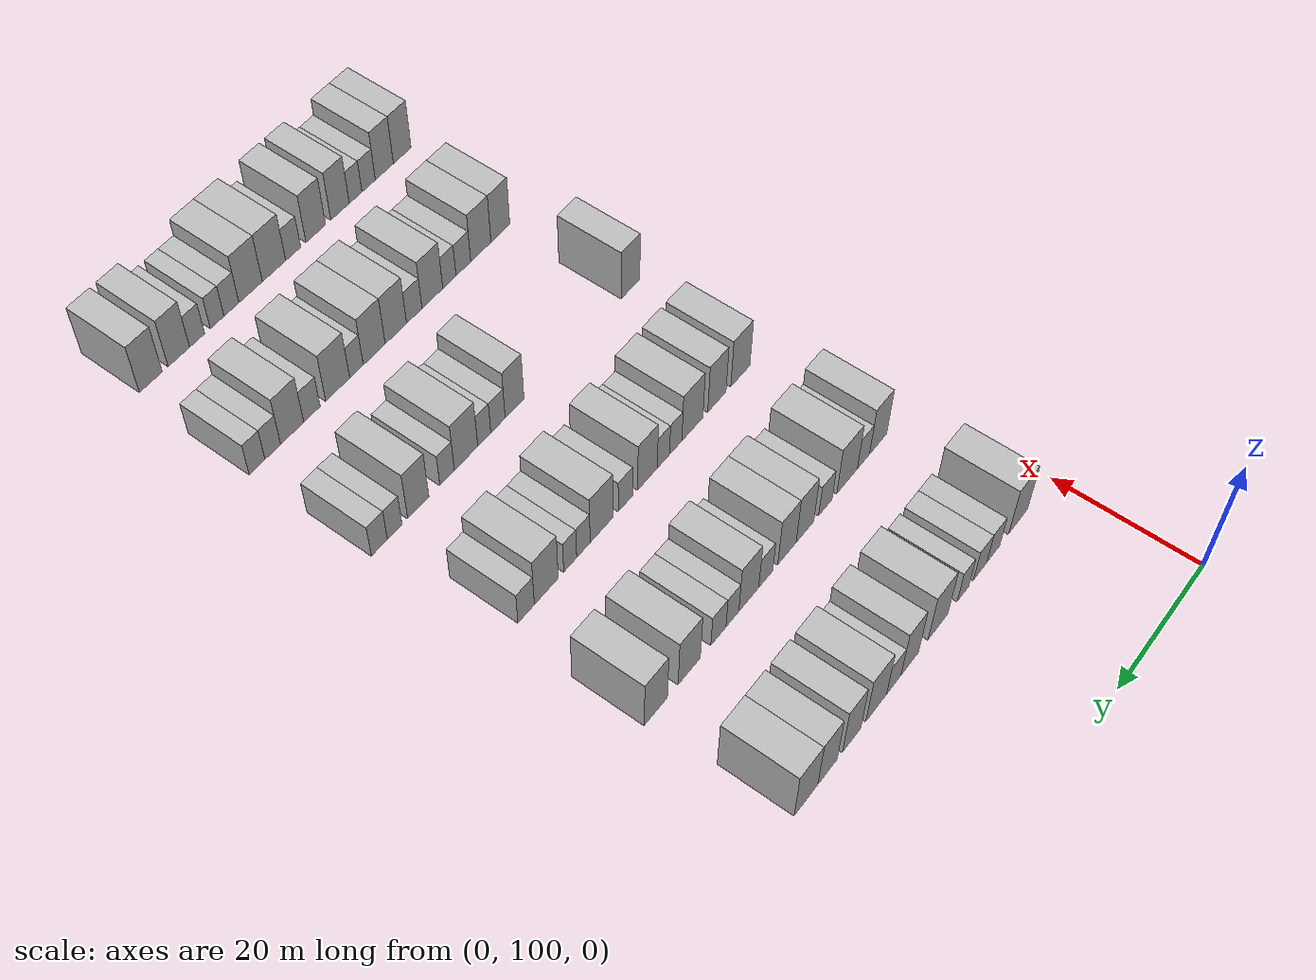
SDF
<sdf version="1.6">
 <world name="default">
  <model name="building_118">
   <static>1</static>
   <pose>25.0000 107.6987 0 0.000000 0.000000 0.000000</pose>
   <link name="link">
    <pose>0 0 4.50 0 0 0</pose>
    <collision name="collision"><geometry><box><size>10.0000 4.3014 9.0000</size></box></geometry></collision>
    <visual name="visual">
     <cast_shadows>0</cast_shadows>
     <geometry><box><size>10.0000 4.3014 9.0000</size></box></geometry>
     <material>
      <script>
       <uri>model://HANNAS_wall/materials/scripts</uri>
       <uri>model://HANNAS_wall/materials/textures</uri>
       <name>vrc/HANNAS_wall</name>
      </script>
     </material>
    </visual>
   </link>
  </model>
  <model name="building_119">
   <static>1</static>
   <pose>25.0000 113.2929 0 0.000000 0.000000 0.000000</pose>
   <link name="link">
    <pose>0 0 3.00 0 0 0</pose>
    <collision name="collision"><geometry><box><size>10.0000 2.8869 6.0000</size></box></geometry></collision>
    <visual name="visual">
     <cast_shadows>0</cast_shadows>
     <geometry><box><size>10.0000 2.8869 6.0000</size></box></geometry>
     <material>
      <script>
       <uri>model://HANNAS_wall/materials/scripts</uri>
       <uri>model://HANNAS_wall/materials/textures</uri>
       <name>vrc/HANNAS_wall</name>
      </script>
     </material>
    </visual>
   </link>
  </model>
  <model name="building_120">
   <static>1</static>
   <pose>25.0000 116.2100 0 0.000000 0.000000 0.000000</pose>
   <link name="link">
    <pose>0 0 3.00 0 0 0</pose>
    <collision name="collision"><geometry><box><size>10.0000 2.9473 6.0000</size></box></geometry></collision>
    <visual name="visual">
     <cast_shadows>0</cast_shadows>
     <geometry><box><size>10.0000 2.9473 6.0000</size></box></geometry>
     <material>
      <script>
       <uri>model://HANNAS_wall/materials/scripts</uri>
       <uri>model://HANNAS_wall/materials/textures</uri>
       <name>vrc/HANNAS_wall</name>
      </script>
     </material>
    </visual>
   </link>
  </model>
  <model name="building_121">
   <static>1</static>
   <pose>25.0000 119.9273 0 0.000000 0.000000 0.000000</pose>
   <link name="link">
    <pose>0 0 3.00 0 0 0</pose>
    <collision name="collision"><geometry><box><size>10.0000 2.4872 6.0000</size></box></geometry></collision>
    <visual name="visual">
     <cast_shadows>0</cast_shadows>
     <geometry><box><size>10.0000 2.4872 6.0000</size></box></geometry>
     <material>
      <script>
       <uri>model://HANNAS_wall/materials/scripts</uri>
       <uri>model://HANNAS_wall/materials/textures</uri>
       <name>vrc/HANNAS_wall</name>
      </script>
     </material>
    </visual>
   </link>
  </model>
  <model name="building_122">
   <static>1</static>
   <pose>25.0000 125.2775 0 0.000000 0.000000 0.000000</pose>
   <link name="link">
    <pose>0 0 4.50 0 0 0</pose>
    <collision name="collision"><geometry><box><size>10.0000 4.2133 9.0000</size></box></geometry></collision>
    <visual name="visual">
     <cast_shadows>0</cast_shadows>
     <geometry><box><size>10.0000 4.2133 9.0000</size></box></geometry>
     <material>
      <script>
       <uri>model://HANNAS_wall/materials/scripts</uri>
       <uri>model://HANNAS_wall/materials/textures</uri>
       <name>vrc/HANNAS_wall</name>
      </script>
     </material>
    </visual>
   </link>
  </model>
  <model name="building_123">
   <static>1</static>
   <pose>25.0000 131.2010 0 0.000000 0.000000 0.000000</pose>
   <link name="link">
    <pose>0 0 4.50 0 0 0</pose>
    <collision name="collision"><geometry><box><size>10.0000 3.6338 9.0000</size></box></geometry></collision>
    <visual name="visual">
     <cast_shadows>0</cast_shadows>
     <geometry><box><size>10.0000 3.6338 9.0000</size></box></geometry>
     <material>
      <script>
       <uri>model://HANNAS_wall/materials/scripts</uri>
       <uri>model://HANNAS_wall/materials/textures</uri>
       <name>vrc/HANNAS_wall</name>
      </script>
     </material>
    </visual>
   </link>
  </model>
  <model name="building_124">
   <static>1</static>
   <pose>25.0000 134.4847 0 0.000000 0.000000 0.000000</pose>
   <link name="link">
    <pose>0 0 3.00 0 0 0</pose>
    <collision name="collision"><geometry><box><size>10.0000 2.9337 6.0000</size></box></geometry></collision>
    <visual name="visual">
     <cast_shadows>0</cast_shadows>
     <geometry><box><size>10.0000 2.9337 6.0000</size></box></geometry>
     <material>
      <script>
       <uri>model://HANNAS_wall/materials/scripts</uri>
       <uri>model://HANNAS_wall/materials/textures</uri>
       <name>vrc/HANNAS_wall</name>
      </script>
     </material>
    </visual>
   </link>
  </model>
  <model name="building_125">
   <static>1</static>
   <pose>25.0000 138.0425 0 0.000000 0.000000 0.000000</pose>
   <link name="link">
    <pose>0 0 4.50 0 0 0</pose>
    <collision name="collision"><geometry><box><size>10.0000 4.1820 9.0000</size></box></geometry></collision>
    <visual name="visual">
     <cast_shadows>0</cast_shadows>
     <geometry><box><size>10.0000 4.1820 9.0000</size></box></geometry>
     <material>
      <script>
       <uri>model://HANNAS_wall/materials/scripts</uri>
       <uri>model://HANNAS_wall/materials/textures</uri>
       <name>vrc/HANNAS_wall</name>
      </script>
     </material>
    </visual>
   </link>
  </model>
  <model name="building_126">
   <static>1</static>
   <pose>25.0000 142.9477 0 0.000000 0.000000 0.000000</pose>
   <link name="link">
    <pose>0 0 4.50 0 0 0</pose>
    <collision name="collision"><geometry><box><size>10.0000 3.6284 9.0000</size></box></geometry></collision>
    <visual name="visual">
     <cast_shadows>0</cast_shadows>
     <geometry><box><size>10.0000 3.6284 9.0000</size></box></geometry>
     <material>
      <script>
       <uri>model://HANNAS_wall/materials/scripts</uri>
       <uri>model://HANNAS_wall/materials/textures</uri>
       <name>vrc/HANNAS_wall</name>
      </script>
     </material>
    </visual>
   </link>
  </model>
  <model name="building_127">
   <static>1</static>
   <pose>25.0000 147.6350 0 0.000000 0.000000 0.000000</pose>
   <link name="link">
    <pose>0 0 4.50 0 0 0</pose>
    <collision name="collision"><geometry><box><size>10.0000 3.7462 9.0000</size></box></geometry></collision>
    <visual name="visual">
     <cast_shadows>0</cast_shadows>
     <geometry><box><size>10.0000 3.7462 9.0000</size></box></geometry>
     <material>
      <script>
       <uri>model://HANNAS_wall/materials/scripts</uri>
       <uri>model://HANNAS_wall/materials/textures</uri>
       <name>vrc/HANNAS_wall</name>
      </script>
     </material>
    </visual>
   </link>
  </model>
  <model name="building_128">
   <static>1</static>
   <pose>25.0000 151.7452 0 0.000000 0.000000 0.000000</pose>
   <link name="link">
    <pose>0 0 4.50 0 0 0</pose>
    <collision name="collision"><geometry><box><size>10.0000 4.4741 9.0000</size></box></geometry></collision>
    <visual name="visual">
     <cast_shadows>0</cast_shadows>
     <geometry><box><size>10.0000 4.4741 9.0000</size></box></geometry>
     <material>
      <script>
       <uri>model://HANNAS_wall/materials/scripts</uri>
       <uri>model://HANNAS_wall/materials/textures</uri>
       <name>vrc/HANNAS_wall</name>
      </script>
     </material>
    </visual>
   </link>
  </model>
  <model name="building_283">
   <static>1</static>
   <pose>44.0000 108.2618 0 0.000000 0.000000 0.000000</pose>
   <link name="link">
    <pose>0 0 4.50 0 0 0</pose>
    <collision name="collision"><geometry><box><size>10.0000 3.7915 9.0000</size></box></geometry></collision>
    <visual name="visual">
     <cast_shadows>0</cast_shadows>
     <geometry><box><size>10.0000 3.7915 9.0000</size></box></geometry>
     <material>
      <script>
       <uri>model://HANNAS_wall/materials/scripts</uri>
       <uri>model://HANNAS_wall/materials/textures</uri>
       <name>vrc/HANNAS_wall</name>
      </script>
     </material>
    </visual>
   </link>
  </model>
  <model name="building_284">
   <static>1</static>
   <pose>44.0000 111.4878 0 0.000000 0.000000 0.000000</pose>
   <link name="link">
    <pose>0 0 3.00 0 0 0</pose>
    <collision name="collision"><geometry><box><size>10.0000 2.6605 6.0000</size></box></geometry></collision>
    <visual name="visual">
     <cast_shadows>0</cast_shadows>
     <geometry><box><size>10.0000 2.6605 6.0000</size></box></geometry>
     <material>
      <script>
       <uri>model://HANNAS_wall/materials/scripts</uri>
       <uri>model://HANNAS_wall/materials/textures</uri>
       <name>vrc/HANNAS_wall</name>
      </script>
     </material>
    </visual>
   </link>
  </model>
  <model name="building_285">
   <static>1</static>
   <pose>44.0000 115.0143 0 0.000000 0.000000 0.000000</pose>
   <link name="link">
    <pose>0 0 4.50 0 0 0</pose>
    <collision name="collision"><geometry><box><size>10.0000 4.3925 9.0000</size></box></geometry></collision>
    <visual name="visual">
     <cast_shadows>0</cast_shadows>
     <geometry><box><size>10.0000 4.3925 9.0000</size></box></geometry>
     <material>
      <script>
       <uri>model://HANNAS_wall/materials/scripts</uri>
       <uri>model://HANNAS_wall/materials/textures</uri>
       <name>vrc/HANNAS_wall</name>
      </script>
     </material>
    </visual>
   </link>
  </model>
  <model name="building_286">
   <static>1</static>
   <pose>44.0000 119.6239 0 0.000000 0.000000 0.000000</pose>
   <link name="link">
    <pose>0 0 3.00 0 0 0</pose>
    <collision name="collision"><geometry><box><size>10.0000 2.8267 6.0000</size></box></geometry></collision>
    <visual name="visual">
     <cast_shadows>0</cast_shadows>
     <geometry><box><size>10.0000 2.8267 6.0000</size></box></geometry>
     <material>
      <script>
       <uri>model://HANNAS_wall/materials/scripts</uri>
       <uri>model://HANNAS_wall/materials/textures</uri>
       <name>vrc/HANNAS_wall</name>
      </script>
     </material>
    </visual>
   </link>
  </model>
  <model name="building_287">
   <static>1</static>
   <pose>44.0000 123.8645 0 0.000000 0.000000 0.000000</pose>
   <link name="link">
    <pose>0 0 4.50 0 0 0</pose>
    <collision name="collision"><geometry><box><size>10.0000 3.6545 9.0000</size></box></geometry></collision>
    <visual name="visual">
     <cast_shadows>0</cast_shadows>
     <geometry><box><size>10.0000 3.6545 9.0000</size></box></geometry>
     <material>
      <script>
       <uri>model://HANNAS_wall/materials/scripts</uri>
       <uri>model://HANNAS_wall/materials/textures</uri>
       <name>vrc/HANNAS_wall</name>
      </script>
     </material>
    </visual>
   </link>
  </model>
  <model name="building_288">
   <static>1</static>
   <pose>44.0000 127.5703 0 0.000000 0.000000 0.000000</pose>
   <link name="link">
    <pose>0 0 4.50 0 0 0</pose>
    <collision name="collision"><geometry><box><size>10.0000 3.7571 9.0000</size></box></geometry></collision>
    <visual name="visual">
     <cast_shadows>0</cast_shadows>
     <geometry><box><size>10.0000 3.7571 9.0000</size></box></geometry>
     <material>
      <script>
       <uri>model://HANNAS_wall/materials/scripts</uri>
       <uri>model://HANNAS_wall/materials/textures</uri>
       <name>vrc/HANNAS_wall</name>
      </script>
     </material>
    </visual>
   </link>
  </model>
  <model name="building_289">
   <static>1</static>
   <pose>44.0000 131.8600 0 0.000000 0.000000 0.000000</pose>
   <link name="link">
    <pose>0 0 3.00 0 0 0</pose>
    <collision name="collision"><geometry><box><size>10.0000 2.8222 6.0000</size></box></geometry></collision>
    <visual name="visual">
     <cast_shadows>0</cast_shadows>
     <geometry><box><size>10.0000 2.8222 6.0000</size></box></geometry>
     <material>
      <script>
       <uri>model://HANNAS_wall/materials/scripts</uri>
       <uri>model://HANNAS_wall/materials/textures</uri>
       <name>vrc/HANNAS_wall</name>
      </script>
     </material>
    </visual>
   </link>
  </model>
  <model name="building_290">
   <static>1</static>
   <pose>44.0000 135.2399 0 0.000000 0.000000 0.000000</pose>
   <link name="link">
    <pose>0 0 4.50 0 0 0</pose>
    <collision name="collision"><geometry><box><size>10.0000 3.9376 9.0000</size></box></geometry></collision>
    <visual name="visual">
     <cast_shadows>0</cast_shadows>
     <geometry><box><size>10.0000 3.9376 9.0000</size></box></geometry>
     <material>
      <script>
       <uri>model://HANNAS_wall/materials/scripts</uri>
       <uri>model://HANNAS_wall/materials/textures</uri>
       <name>vrc/HANNAS_wall</name>
      </script>
     </material>
    </visual>
   </link>
  </model>
  <model name="building_291">
   <static>1</static>
   <pose>44.0000 138.4549 0 0.000000 0.000000 0.000000</pose>
   <link name="link">
    <pose>0 0 3.00 0 0 0</pose>
    <collision name="collision"><geometry><box><size>10.0000 2.4925 6.0000</size></box></geometry></collision>
    <visual name="visual">
     <cast_shadows>0</cast_shadows>
     <geometry><box><size>10.0000 2.4925 6.0000</size></box></geometry>
     <material>
      <script>
       <uri>model://HANNAS_wall/materials/scripts</uri>
       <uri>model://HANNAS_wall/materials/textures</uri>
       <name>vrc/HANNAS_wall</name>
      </script>
     </material>
    </visual>
   </link>
  </model>
  <model name="building_292">
   <static>1</static>
   <pose>44.0000 141.1619 0 0.000000 0.000000 0.000000</pose>
   <link name="link">
    <pose>0 0 3.00 0 0 0</pose>
    <collision name="collision"><geometry><box><size>10.0000 2.9215 6.0000</size></box></geometry></collision>
    <visual name="visual">
     <cast_shadows>0</cast_shadows>
     <geometry><box><size>10.0000 2.9215 6.0000</size></box></geometry>
     <material>
      <script>
       <uri>model://HANNAS_wall/materials/scripts</uri>
       <uri>model://HANNAS_wall/materials/textures</uri>
       <name>vrc/HANNAS_wall</name>
      </script>
     </material>
    </visual>
   </link>
  </model>
  <model name="building_293">
   <static>1</static>
   <pose>44.0000 146.7173 0 0.000000 0.000000 0.000000</pose>
   <link name="link">
    <pose>0 0 4.50 0 0 0</pose>
    <collision name="collision"><geometry><box><size>10.0000 4.1893 9.0000</size></box></geometry></collision>
    <visual name="visual">
     <cast_shadows>0</cast_shadows>
     <geometry><box><size>10.0000 4.1893 9.0000</size></box></geometry>
     <material>
      <script>
       <uri>model://HANNAS_wall/materials/scripts</uri>
       <uri>model://HANNAS_wall/materials/textures</uri>
       <name>vrc/HANNAS_wall</name>
      </script>
     </material>
    </visual>
   </link>
  </model>
  <model name="building_294">
   <static>1</static>
   <pose>44.0000 152.9412 0 0.000000 0.000000 0.000000</pose>
   <link name="link">
    <pose>0 0 4.50 0 0 0</pose>
    <collision name="collision"><geometry><box><size>10.0000 4.2584 9.0000</size></box></geometry></collision>
    <visual name="visual">
     <cast_shadows>0</cast_shadows>
     <geometry><box><size>10.0000 4.2584 9.0000</size></box></geometry>
     <material>
      <script>
       <uri>model://HANNAS_wall/materials/scripts</uri>
       <uri>model://HANNAS_wall/materials/textures</uri>
       <name>vrc/HANNAS_wall</name>
      </script>
     </material>
    </visual>
   </link>
  </model>
  <model name="building_463">
   <static>1</static>
   <pose>63.0000 109.9010 0 0.000000 0.000000 0.000000</pose>
   <link name="link">
    <pose>0 0 4.50 0 0 0</pose>
    <collision name="collision"><geometry><box><size>10.0000 4.0710 9.0000</size></box></geometry></collision>
    <visual name="visual">
     <cast_shadows>0</cast_shadows>
     <geometry><box><size>10.0000 4.0710 9.0000</size></box></geometry>
     <material>
      <script>
       <uri>model://HANNAS_wall/materials/scripts</uri>
       <uri>model://HANNAS_wall/materials/textures</uri>
       <name>vrc/HANNAS_wall</name>
      </script>
     </material>
    </visual>
   </link>
  </model>
  <model name="building_464">
   <static>1</static>
   <pose>63.0000 114.8454 0 0.000000 0.000000 0.000000</pose>
   <link name="link">
    <pose>0 0 4.50 0 0 0</pose>
    <collision name="collision"><geometry><box><size>10.0000 3.8178 9.0000</size></box></geometry></collision>
    <visual name="visual">
     <cast_shadows>0</cast_shadows>
     <geometry><box><size>10.0000 3.8178 9.0000</size></box></geometry>
     <material>
      <script>
       <uri>model://HANNAS_wall/materials/scripts</uri>
       <uri>model://HANNAS_wall/materials/textures</uri>
       <name>vrc/HANNAS_wall</name>
      </script>
     </material>
    </visual>
   </link>
  </model>
  <model name="building_465">
   <static>1</static>
   <pose>63.0000 119.9070 0 0.000000 0.000000 0.000000</pose>
   <link name="link">
    <pose>0 0 4.50 0 0 0</pose>
    <collision name="collision"><geometry><box><size>10.0000 4.3053 9.0000</size></box></geometry></collision>
    <visual name="visual">
     <cast_shadows>0</cast_shadows>
     <geometry><box><size>10.0000 4.3053 9.0000</size></box></geometry>
     <material>
      <script>
       <uri>model://HANNAS_wall/materials/scripts</uri>
       <uri>model://HANNAS_wall/materials/textures</uri>
       <name>vrc/HANNAS_wall</name>
      </script>
     </material>
    </visual>
   </link>
  </model>
  <model name="building_466">
   <static>1</static>
   <pose>63.0000 123.3023 0 0.000000 0.000000 0.000000</pose>
   <link name="link">
    <pose>0 0 3.00 0 0 0</pose>
    <collision name="collision"><geometry><box><size>10.0000 2.4853 6.0000</size></box></geometry></collision>
    <visual name="visual">
     <cast_shadows>0</cast_shadows>
     <geometry><box><size>10.0000 2.4853 6.0000</size></box></geometry>
     <material>
      <script>
       <uri>model://HANNAS_wall/materials/scripts</uri>
       <uri>model://HANNAS_wall/materials/textures</uri>
       <name>vrc/HANNAS_wall</name>
      </script>
     </material>
    </visual>
   </link>
  </model>
  <model name="building_467">
   <static>1</static>
   <pose>63.0000 125.7762 0 0.000000 0.000000 0.000000</pose>
   <link name="link">
    <pose>0 0 3.00 0 0 0</pose>
    <collision name="collision"><geometry><box><size>10.0000 2.4626 6.0000</size></box></geometry></collision>
    <visual name="visual">
     <cast_shadows>0</cast_shadows>
     <geometry><box><size>10.0000 2.4626 6.0000</size></box></geometry>
     <material>
      <script>
       <uri>model://HANNAS_wall/materials/scripts</uri>
       <uri>model://HANNAS_wall/materials/textures</uri>
       <name>vrc/HANNAS_wall</name>
      </script>
     </material>
    </visual>
   </link>
  </model>
  <model name="building_468">
   <static>1</static>
   <pose>63.0000 128.9493 0 0.000000 0.000000 0.000000</pose>
   <link name="link">
    <pose>0 0 4.50 0 0 0</pose>
    <collision name="collision"><geometry><box><size>10.0000 3.8835 9.0000</size></box></geometry></collision>
    <visual name="visual">
     <cast_shadows>0</cast_shadows>
     <geometry><box><size>10.0000 3.8835 9.0000</size></box></geometry>
     <material>
      <script>
       <uri>model://HANNAS_wall/materials/scripts</uri>
       <uri>model://HANNAS_wall/materials/textures</uri>
       <name>vrc/HANNAS_wall</name>
      </script>
     </material>
    </visual>
   </link>
  </model>
  <model name="building_469">
   <static>1</static>
   <pose>63.0000 133.2867 0 0.000000 0.000000 0.000000</pose>
   <link name="link">
    <pose>0 0 3.00 0 0 0</pose>
    <collision name="collision"><geometry><box><size>10.0000 2.7914 6.0000</size></box></geometry></collision>
    <visual name="visual">
     <cast_shadows>0</cast_shadows>
     <geometry><box><size>10.0000 2.7914 6.0000</size></box></geometry>
     <material>
      <script>
       <uri>model://HANNAS_wall/materials/scripts</uri>
       <uri>model://HANNAS_wall/materials/textures</uri>
       <name>vrc/HANNAS_wall</name>
      </script>
     </material>
    </visual>
   </link>
  </model>
  <model name="building_470">
   <static>1</static>
   <pose>63.0000 137.8718 0 0.000000 0.000000 0.000000</pose>
   <link name="link">
    <pose>0 0 4.50 0 0 0</pose>
    <collision name="collision"><geometry><box><size>10.0000 4.3787 9.0000</size></box></geometry></collision>
    <visual name="visual">
     <cast_shadows>0</cast_shadows>
     <geometry><box><size>10.0000 4.3787 9.0000</size></box></geometry>
     <material>
      <script>
       <uri>model://HANNAS_wall/materials/scripts</uri>
       <uri>model://HANNAS_wall/materials/textures</uri>
       <name>vrc/HANNAS_wall</name>
      </script>
     </material>
    </visual>
   </link>
  </model>
  <model name="building_471">
   <static>1</static>
   <pose>63.0000 141.3315 0 0.000000 0.000000 0.000000</pose>
   <link name="link">
    <pose>0 0 3.00 0 0 0</pose>
    <collision name="collision"><geometry><box><size>10.0000 2.5408 6.0000</size></box></geometry></collision>
    <visual name="visual">
     <cast_shadows>0</cast_shadows>
     <geometry><box><size>10.0000 2.5408 6.0000</size></box></geometry>
     <material>
      <script>
       <uri>model://HANNAS_wall/materials/scripts</uri>
       <uri>model://HANNAS_wall/materials/textures</uri>
       <name>vrc/HANNAS_wall</name>
      </script>
     </material>
    </visual>
   </link>
  </model>
  <model name="building_472">
   <static>1</static>
   <pose>63.0000 143.8153 0 0.000000 0.000000 0.000000</pose>
   <link name="link">
    <pose>0 0 3.00 0 0 0</pose>
    <collision name="collision"><geometry><box><size>10.0000 2.4267 6.0000</size></box></geometry></collision>
    <visual name="visual">
     <cast_shadows>0</cast_shadows>
     <geometry><box><size>10.0000 2.4267 6.0000</size></box></geometry>
     <material>
      <script>
       <uri>model://HANNAS_wall/materials/scripts</uri>
       <uri>model://HANNAS_wall/materials/textures</uri>
       <name>vrc/HANNAS_wall</name>
      </script>
     </material>
    </visual>
   </link>
  </model>
  <model name="building_473">
   <static>1</static>
   <pose>63.0000 148.2224 0 0.000000 0.000000 0.000000</pose>
   <link name="link">
    <pose>0 0 4.50 0 0 0</pose>
    <collision name="collision"><geometry><box><size>10.0000 4.3874 9.0000</size></box></geometry></collision>
    <visual name="visual">
     <cast_shadows>0</cast_shadows>
     <geometry><box><size>10.0000 4.3874 9.0000</size></box></geometry>
     <material>
      <script>
       <uri>model://HANNAS_wall/materials/scripts</uri>
       <uri>model://HANNAS_wall/materials/textures</uri>
       <name>vrc/HANNAS_wall</name>
      </script>
     </material>
    </visual>
   </link>
  </model>
  <model name="building_474">
   <static>1</static>
   <pose>63.0000 151.9035 0 0.000000 0.000000 0.000000</pose>
   <link name="link">
    <pose>0 0 3.00 0 0 0</pose>
    <collision name="collision"><geometry><box><size>10.0000 2.9748 6.0000</size></box></geometry></collision>
    <visual name="visual">
     <cast_shadows>0</cast_shadows>
     <geometry><box><size>10.0000 2.9748 6.0000</size></box></geometry>
     <material>
      <script>
       <uri>model://HANNAS_wall/materials/scripts</uri>
       <uri>model://HANNAS_wall/materials/textures</uri>
       <name>vrc/HANNAS_wall</name>
      </script>
     </material>
    </visual>
   </link>
  </model>
  <model name="building_613">
   <static>1</static>
   <pose>82.0000 107.0417 0 0.000000 0.000000 0.000000</pose>
   <link name="link">
    <pose>0 0 4.50 0 0 0</pose>
    <collision name="collision"><geometry><box><size>10.0000 3.8947 9.0000</size></box></geometry></collision>
    <visual name="visual">
     <cast_shadows>0</cast_shadows>
     <geometry><box><size>10.0000 3.8947 9.0000</size></box></geometry>
     <material>
      <script>
       <uri>model://HANNAS_wall/materials/scripts</uri>
       <uri>model://HANNAS_wall/materials/textures</uri>
       <name>vrc/HANNAS_wall</name>
      </script>
     </material>
    </visual>
   </link>
  </model>
  <model name="building_614">
   <static>1</static>
   <pose>82.0000 130.4207 0 0.000000 0.000000 0.000000</pose>
   <link name="link">
    <pose>0 0 4.50 0 0 0</pose>
    <collision name="collision"><geometry><box><size>10.0000 3.6211 9.0000</size></box></geometry></collision>
    <visual name="visual">
     <cast_shadows>0</cast_shadows>
     <geometry><box><size>10.0000 3.6211 9.0000</size></box></geometry>
     <material>
      <script>
       <uri>model://HANNAS_wall/materials/scripts</uri>
       <uri>model://HANNAS_wall/materials/textures</uri>
       <name>vrc/HANNAS_wall</name>
      </script>
     </material>
    </visual>
   </link>
  </model>
  <model name="building_615">
   <static>1</static>
   <pose>82.0000 133.5984 0 0.000000 0.000000 0.000000</pose>
   <link name="link">
    <pose>0 0 3.00 0 0 0</pose>
    <collision name="collision"><geometry><box><size>10.0000 2.7344 6.0000</size></box></geometry></collision>
    <visual name="visual">
     <cast_shadows>0</cast_shadows>
     <geometry><box><size>10.0000 2.7344 6.0000</size></box></geometry>
     <material>
      <script>
       <uri>model://HANNAS_wall/materials/scripts</uri>
       <uri>model://HANNAS_wall/materials/textures</uri>
       <name>vrc/HANNAS_wall</name>
      </script>
     </material>
    </visual>
   </link>
  </model>
  <model name="building_616">
   <static>1</static>
   <pose>82.0000 136.1928 0 0.000000 0.000000 0.000000</pose>
   <link name="link">
    <pose>0 0 3.00 0 0 0</pose>
    <collision name="collision"><geometry><box><size>10.0000 2.4544 6.0000</size></box></geometry></collision>
    <visual name="visual">
     <cast_shadows>0</cast_shadows>
     <geometry><box><size>10.0000 2.4544 6.0000</size></box></geometry>
     <material>
      <script>
       <uri>model://HANNAS_wall/materials/scripts</uri>
       <uri>model://HANNAS_wall/materials/textures</uri>
       <name>vrc/HANNAS_wall</name>
      </script>
     </material>
    </visual>
   </link>
  </model>
  <model name="building_617">
   <static>1</static>
   <pose>82.0000 139.5994 0 0.000000 0.000000 0.000000</pose>
   <link name="link">
    <pose>0 0 4.50 0 0 0</pose>
    <collision name="collision"><geometry><box><size>10.0000 4.3588 9.0000</size></box></geometry></collision>
    <visual name="visual">
     <cast_shadows>0</cast_shadows>
     <geometry><box><size>10.0000 4.3588 9.0000</size></box></geometry>
     <material>
      <script>
       <uri>model://HANNAS_wall/materials/scripts</uri>
       <uri>model://HANNAS_wall/materials/textures</uri>
       <name>vrc/HANNAS_wall</name>
      </script>
     </material>
    </visual>
   </link>
  </model>
  <model name="building_618">
   <static>1</static>
   <pose>82.0000 143.1146 0 0.000000 0.000000 0.000000</pose>
   <link name="link">
    <pose>0 0 3.00 0 0 0</pose>
    <collision name="collision"><geometry><box><size>10.0000 2.6716 6.0000</size></box></geometry></collision>
    <visual name="visual">
     <cast_shadows>0</cast_shadows>
     <geometry><box><size>10.0000 2.6716 6.0000</size></box></geometry>
     <material>
      <script>
       <uri>model://HANNAS_wall/materials/scripts</uri>
       <uri>model://HANNAS_wall/materials/textures</uri>
       <name>vrc/HANNAS_wall</name>
      </script>
     </material>
    </visual>
   </link>
  </model>
  <model name="building_619">
   <static>1</static>
   <pose>82.0000 148.3614 0 0.000000 0.000000 0.000000</pose>
   <link name="link">
    <pose>0 0 4.50 0 0 0</pose>
    <collision name="collision"><geometry><box><size>10.0000 3.8220 9.0000</size></box></geometry></collision>
    <visual name="visual">
     <cast_shadows>0</cast_shadows>
     <geometry><box><size>10.0000 3.8220 9.0000</size></box></geometry>
     <material>
      <script>
       <uri>model://HANNAS_wall/materials/scripts</uri>
       <uri>model://HANNAS_wall/materials/textures</uri>
       <name>vrc/HANNAS_wall</name>
      </script>
     </material>
    </visual>
   </link>
  </model>
  <model name="building_620">
   <static>1</static>
   <pose>82.0000 152.5661 0 0.000000 0.000000 0.000000</pose>
   <link name="link">
    <pose>0 0 3.00 0 0 0</pose>
    <collision name="collision"><geometry><box><size>10.0000 2.5874 6.0000</size></box></geometry></collision>
    <visual name="visual">
     <cast_shadows>0</cast_shadows>
     <geometry><box><size>10.0000 2.5874 6.0000</size></box></geometry>
     <material>
      <script>
       <uri>model://HANNAS_wall/materials/scripts</uri>
       <uri>model://HANNAS_wall/materials/textures</uri>
       <name>vrc/HANNAS_wall</name>
      </script>
     </material>
    </visual>
   </link>
  </model>
  <model name="building_621">
   <static>1</static>
   <pose>82.0000 155.2726 0 0.000000 0.000000 0.000000</pose>
   <link name="link">
    <pose>0 0 3.00 0 0 0</pose>
    <collision name="collision"><geometry><box><size>10.0000 2.8256 6.0000</size></box></geometry></collision>
    <visual name="visual">
     <cast_shadows>0</cast_shadows>
     <geometry><box><size>10.0000 2.8256 6.0000</size></box></geometry>
     <material>
      <script>
       <uri>model://HANNAS_wall/materials/scripts</uri>
       <uri>model://HANNAS_wall/materials/textures</uri>
       <name>vrc/HANNAS_wall</name>
      </script>
     </material>
    </visual>
   </link>
  </model>
  <model name="building_779">
   <static>1</static>
   <pose>101.0000 109.7761 0 0.000000 0.000000 0.000000</pose>
   <link name="link">
    <pose>0 0 4.50 0 0 0</pose>
    <collision name="collision"><geometry><box><size>10.0000 3.8468 9.0000</size></box></geometry></collision>
    <visual name="visual">
     <cast_shadows>0</cast_shadows>
     <geometry><box><size>10.0000 3.8468 9.0000</size></box></geometry>
     <material>
      <script>
       <uri>model://HANNAS_wall/materials/scripts</uri>
       <uri>model://HANNAS_wall/materials/textures</uri>
       <name>vrc/HANNAS_wall</name>
      </script>
     </material>
    </visual>
   </link>
  </model>
  <model name="building_780">
   <static>1</static>
   <pose>101.0000 113.7400 0 0.000000 0.000000 0.000000</pose>
   <link name="link">
    <pose>0 0 4.50 0 0 0</pose>
    <collision name="collision"><geometry><box><size>10.0000 4.0810 9.0000</size></box></geometry></collision>
    <visual name="visual">
     <cast_shadows>0</cast_shadows>
     <geometry><box><size>10.0000 4.0810 9.0000</size></box></geometry>
     <material>
      <script>
       <uri>model://HANNAS_wall/materials/scripts</uri>
       <uri>model://HANNAS_wall/materials/textures</uri>
       <name>vrc/HANNAS_wall</name>
      </script>
     </material>
    </visual>
   </link>
  </model>
  <model name="building_781">
   <static>1</static>
   <pose>101.0000 117.2476 0 0.000000 0.000000 0.000000</pose>
   <link name="link">
    <pose>0 0 3.00 0 0 0</pose>
    <collision name="collision"><geometry><box><size>10.0000 2.9342 6.0000</size></box></geometry></collision>
    <visual name="visual">
     <cast_shadows>0</cast_shadows>
     <geometry><box><size>10.0000 2.9342 6.0000</size></box></geometry>
     <material>
      <script>
       <uri>model://HANNAS_wall/materials/scripts</uri>
       <uri>model://HANNAS_wall/materials/textures</uri>
       <name>vrc/HANNAS_wall</name>
      </script>
     </material>
    </visual>
   </link>
  </model>
  <model name="building_782">
   <static>1</static>
   <pose>101.0000 120.0191 0 0.000000 0.000000 0.000000</pose>
   <link name="link">
    <pose>0 0 3.00 0 0 0</pose>
    <collision name="collision"><geometry><box><size>10.0000 2.6087 6.0000</size></box></geometry></collision>
    <visual name="visual">
     <cast_shadows>0</cast_shadows>
     <geometry><box><size>10.0000 2.6087 6.0000</size></box></geometry>
     <material>
      <script>
       <uri>model://HANNAS_wall/materials/scripts</uri>
       <uri>model://HANNAS_wall/materials/textures</uri>
       <name>vrc/HANNAS_wall</name>
      </script>
     </material>
    </visual>
   </link>
  </model>
  <model name="building_783">
   <static>1</static>
   <pose>101.0000 123.3510 0 0.000000 0.000000 0.000000</pose>
   <link name="link">
    <pose>0 0 4.50 0 0 0</pose>
    <collision name="collision"><geometry><box><size>10.0000 4.0551 9.0000</size></box></geometry></collision>
    <visual name="visual">
     <cast_shadows>0</cast_shadows>
     <geometry><box><size>10.0000 4.0551 9.0000</size></box></geometry>
     <material>
      <script>
       <uri>model://HANNAS_wall/materials/scripts</uri>
       <uri>model://HANNAS_wall/materials/textures</uri>
       <name>vrc/HANNAS_wall</name>
      </script>
     </material>
    </visual>
   </link>
  </model>
  <model name="building_784">
   <static>1</static>
   <pose>101.0000 126.8594 0 0.000000 0.000000 0.000000</pose>
   <link name="link">
    <pose>0 0 3.00 0 0 0</pose>
    <collision name="collision"><geometry><box><size>10.0000 2.9618 6.0000</size></box></geometry></collision>
    <visual name="visual">
     <cast_shadows>0</cast_shadows>
     <geometry><box><size>10.0000 2.9618 6.0000</size></box></geometry>
     <material>
      <script>
       <uri>model://HANNAS_wall/materials/scripts</uri>
       <uri>model://HANNAS_wall/materials/textures</uri>
       <name>vrc/HANNAS_wall</name>
      </script>
     </material>
    </visual>
   </link>
  </model>
  <model name="building_785">
   <static>1</static>
   <pose>101.0000 130.3778 0 0.000000 0.000000 0.000000</pose>
   <link name="link">
    <pose>0 0 4.50 0 0 0</pose>
    <collision name="collision"><geometry><box><size>10.0000 4.0750 9.0000</size></box></geometry></collision>
    <visual name="visual">
     <cast_shadows>0</cast_shadows>
     <geometry><box><size>10.0000 4.0750 9.0000</size></box></geometry>
     <material>
      <script>
       <uri>model://HANNAS_wall/materials/scripts</uri>
       <uri>model://HANNAS_wall/materials/textures</uri>
       <name>vrc/HANNAS_wall</name>
      </script>
     </material>
    </visual>
   </link>
  </model>
  <model name="building_786">
   <static>1</static>
   <pose>101.0000 134.4634 0 0.000000 0.000000 0.000000</pose>
   <link name="link">
    <pose>0 0 4.50 0 0 0</pose>
    <collision name="collision"><geometry><box><size>10.0000 4.0961 9.0000</size></box></geometry></collision>
    <visual name="visual">
     <cast_shadows>0</cast_shadows>
     <geometry><box><size>10.0000 4.0961 9.0000</size></box></geometry>
     <material>
      <script>
       <uri>model://HANNAS_wall/materials/scripts</uri>
       <uri>model://HANNAS_wall/materials/textures</uri>
       <name>vrc/HANNAS_wall</name>
      </script>
     </material>
    </visual>
   </link>
  </model>
  <model name="building_787">
   <static>1</static>
   <pose>101.0000 137.7672 0 0.000000 0.000000 0.000000</pose>
   <link name="link">
    <pose>0 0 3.00 0 0 0</pose>
    <collision name="collision"><geometry><box><size>10.0000 2.5116 6.0000</size></box></geometry></collision>
    <visual name="visual">
     <cast_shadows>0</cast_shadows>
     <geometry><box><size>10.0000 2.5116 6.0000</size></box></geometry>
     <material>
      <script>
       <uri>model://HANNAS_wall/materials/scripts</uri>
       <uri>model://HANNAS_wall/materials/textures</uri>
       <name>vrc/HANNAS_wall</name>
      </script>
     </material>
    </visual>
   </link>
  </model>
  <model name="building_788">
   <static>1</static>
   <pose>101.0000 141.2122 0 0.000000 0.000000 0.000000</pose>
   <link name="link">
    <pose>0 0 4.50 0 0 0</pose>
    <collision name="collision"><geometry><box><size>10.0000 4.3785 9.0000</size></box></geometry></collision>
    <visual name="visual">
     <cast_shadows>0</cast_shadows>
     <geometry><box><size>10.0000 4.3785 9.0000</size></box></geometry>
     <material>
      <script>
       <uri>model://HANNAS_wall/materials/scripts</uri>
       <uri>model://HANNAS_wall/materials/textures</uri>
       <name>vrc/HANNAS_wall</name>
      </script>
     </material>
    </visual>
   </link>
  </model>
  <model name="building_789">
   <static>1</static>
   <pose>101.0000 145.8788 0 0.000000 0.000000 0.000000</pose>
   <link name="link">
    <pose>0 0 3.00 0 0 0</pose>
    <collision name="collision"><geometry><box><size>10.0000 2.9548 6.0000</size></box></geometry></collision>
    <visual name="visual">
     <cast_shadows>0</cast_shadows>
     <geometry><box><size>10.0000 2.9548 6.0000</size></box></geometry>
     <material>
      <script>
       <uri>model://HANNAS_wall/materials/scripts</uri>
       <uri>model://HANNAS_wall/materials/textures</uri>
       <name>vrc/HANNAS_wall</name>
      </script>
     </material>
    </visual>
   </link>
  </model>
  <model name="building_790">
   <static>1</static>
   <pose>101.0000 149.3965 0 0.000000 0.000000 0.000000</pose>
   <link name="link">
    <pose>0 0 4.50 0 0 0</pose>
    <collision name="collision"><geometry><box><size>10.0000 4.0807 9.0000</size></box></geometry></collision>
    <visual name="visual">
     <cast_shadows>0</cast_shadows>
     <geometry><box><size>10.0000 4.0807 9.0000</size></box></geometry>
     <material>
      <script>
       <uri>model://HANNAS_wall/materials/scripts</uri>
       <uri>model://HANNAS_wall/materials/textures</uri>
       <name>vrc/HANNAS_wall</name>
      </script>
     </material>
    </visual>
   </link>
  </model>
  <model name="building_791">
   <static>1</static>
   <pose>101.0000 152.8100 0 0.000000 0.000000 0.000000</pose>
   <link name="link">
    <pose>0 0 3.00 0 0 0</pose>
    <collision name="collision"><geometry><box><size>10.0000 2.7463 6.0000</size></box></geometry></collision>
    <visual name="visual">
     <cast_shadows>0</cast_shadows>
     <geometry><box><size>10.0000 2.7463 6.0000</size></box></geometry>
     <material>
      <script>
       <uri>model://HANNAS_wall/materials/scripts</uri>
       <uri>model://HANNAS_wall/materials/textures</uri>
       <name>vrc/HANNAS_wall</name>
      </script>
     </material>
    </visual>
   </link>
  </model>
  <model name="building_792">
   <static>1</static>
   <pose>101.0000 155.5447 0 0.000000 0.000000 0.000000</pose>
   <link name="link">
    <pose>0 0 3.00 0 0 0</pose>
    <collision name="collision"><geometry><box><size>10.0000 2.7231 6.0000</size></box></geometry></collision>
    <visual name="visual">
     <cast_shadows>0</cast_shadows>
     <geometry><box><size>10.0000 2.7231 6.0000</size></box></geometry>
     <material>
      <script>
       <uri>model://HANNAS_wall/materials/scripts</uri>
       <uri>model://HANNAS_wall/materials/textures</uri>
       <name>vrc/HANNAS_wall</name>
      </script>
     </material>
    </visual>
   </link>
  </model>
  <model name="building_942">
   <static>1</static>
   <pose>120.0000 107.1132 0 0.000000 0.000000 0.000000</pose>
   <link name="link">
    <pose>0 0 4.50 0 0 0</pose>
    <collision name="collision"><geometry><box><size>10.0000 3.6019 9.0000</size></box></geometry></collision>
    <visual name="visual">
     <cast_shadows>0</cast_shadows>
     <geometry><box><size>10.0000 3.6019 9.0000</size></box></geometry>
     <material>
      <script>
       <uri>model://HANNAS_wall/materials/scripts</uri>
       <uri>model://HANNAS_wall/materials/textures</uri>
       <name>vrc/HANNAS_wall</name>
      </script>
     </material>
    </visual>
   </link>
  </model>
  <model name="building_943">
   <static>1</static>
   <pose>120.0000 110.7215 0 0.000000 0.000000 0.000000</pose>
   <link name="link">
    <pose>0 0 4.50 0 0 0</pose>
    <collision name="collision"><geometry><box><size>10.0000 3.6146 9.0000</size></box></geometry></collision>
    <visual name="visual">
     <cast_shadows>0</cast_shadows>
     <geometry><box><size>10.0000 3.6146 9.0000</size></box></geometry>
     <material>
      <script>
       <uri>model://HANNAS_wall/materials/scripts</uri>
       <uri>model://HANNAS_wall/materials/textures</uri>
       <name>vrc/HANNAS_wall</name>
      </script>
     </material>
    </visual>
   </link>
  </model>
  <model name="building_944">
   <static>1</static>
   <pose>120.0000 113.8663 0 0.000000 0.000000 0.000000</pose>
   <link name="link">
    <pose>0 0 3.00 0 0 0</pose>
    <collision name="collision"><geometry><box><size>10.0000 2.6751 6.0000</size></box></geometry></collision>
    <visual name="visual">
     <cast_shadows>0</cast_shadows>
     <geometry><box><size>10.0000 2.6751 6.0000</size></box></geometry>
     <material>
      <script>
       <uri>model://HANNAS_wall/materials/scripts</uri>
       <uri>model://HANNAS_wall/materials/textures</uri>
       <name>vrc/HANNAS_wall</name>
      </script>
     </material>
    </visual>
   </link>
  </model>
  <model name="building_945">
   <static>1</static>
   <pose>120.0000 116.4470 0 0.000000 0.000000 0.000000</pose>
   <link name="link">
    <pose>0 0 3.00 0 0 0</pose>
    <collision name="collision"><geometry><box><size>10.0000 2.4863 6.0000</size></box></geometry></collision>
    <visual name="visual">
     <cast_shadows>0</cast_shadows>
     <geometry><box><size>10.0000 2.4863 6.0000</size></box></geometry>
     <material>
      <script>
       <uri>model://HANNAS_wall/materials/scripts</uri>
       <uri>model://HANNAS_wall/materials/textures</uri>
       <name>vrc/HANNAS_wall</name>
      </script>
     </material>
    </visual>
   </link>
  </model>
  <model name="building_946">
   <static>1</static>
   <pose>120.0000 119.5005 0 0.000000 0.000000 0.000000</pose>
   <link name="link">
    <pose>0 0 4.50 0 0 0</pose>
    <collision name="collision"><geometry><box><size>10.0000 3.6205 9.0000</size></box></geometry></collision>
    <visual name="visual">
     <cast_shadows>0</cast_shadows>
     <geometry><box><size>10.0000 3.6205 9.0000</size></box></geometry>
     <material>
      <script>
       <uri>model://HANNAS_wall/materials/scripts</uri>
       <uri>model://HANNAS_wall/materials/textures</uri>
       <name>vrc/HANNAS_wall</name>
      </script>
     </material>
    </visual>
   </link>
  </model>
  <model name="building_947">
   <static>1</static>
   <pose>120.0000 124.2013 0 0.000000 0.000000 0.000000</pose>
   <link name="link">
    <pose>0 0 4.50 0 0 0</pose>
    <collision name="collision"><geometry><box><size>10.0000 3.7811 9.0000</size></box></geometry></collision>
    <visual name="visual">
     <cast_shadows>0</cast_shadows>
     <geometry><box><size>10.0000 3.7811 9.0000</size></box></geometry>
     <material>
      <script>
       <uri>model://HANNAS_wall/materials/scripts</uri>
       <uri>model://HANNAS_wall/materials/textures</uri>
       <name>vrc/HANNAS_wall</name>
      </script>
     </material>
    </visual>
   </link>
  </model>
  <model name="building_948">
   <static>1</static>
   <pose>120.0000 128.5028 0 0.000000 0.000000 0.000000</pose>
   <link name="link">
    <pose>0 0 3.00 0 0 0</pose>
    <collision name="collision"><geometry><box><size>10.0000 2.8219 6.0000</size></box></geometry></collision>
    <visual name="visual">
     <cast_shadows>0</cast_shadows>
     <geometry><box><size>10.0000 2.8219 6.0000</size></box></geometry>
     <material>
      <script>
       <uri>model://HANNAS_wall/materials/scripts</uri>
       <uri>model://HANNAS_wall/materials/textures</uri>
       <name>vrc/HANNAS_wall</name>
      </script>
     </material>
    </visual>
   </link>
  </model>
  <model name="building_949">
   <static>1</static>
   <pose>120.0000 132.0887 0 0.000000 0.000000 0.000000</pose>
   <link name="link">
    <pose>0 0 4.50 0 0 0</pose>
    <collision name="collision"><geometry><box><size>10.0000 4.3498 9.0000</size></box></geometry></collision>
    <visual name="visual">
     <cast_shadows>0</cast_shadows>
     <geometry><box><size>10.0000 4.3498 9.0000</size></box></geometry>
     <material>
      <script>
       <uri>model://HANNAS_wall/materials/scripts</uri>
       <uri>model://HANNAS_wall/materials/textures</uri>
       <name>vrc/HANNAS_wall</name>
      </script>
     </material>
    </visual>
   </link>
  </model>
  <model name="building_950">
   <static>1</static>
   <pose>120.0000 136.4109 0 0.000000 0.000000 0.000000</pose>
   <link name="link">
    <pose>0 0 4.50 0 0 0</pose>
    <collision name="collision"><geometry><box><size>10.0000 4.2947 9.0000</size></box></geometry></collision>
    <visual name="visual">
     <cast_shadows>0</cast_shadows>
     <geometry><box><size>10.0000 4.2947 9.0000</size></box></geometry>
     <material>
      <script>
       <uri>model://HANNAS_wall/materials/scripts</uri>
       <uri>model://HANNAS_wall/materials/textures</uri>
       <name>vrc/HANNAS_wall</name>
      </script>
     </material>
    </visual>
   </link>
  </model>
  <model name="building_951">
   <static>1</static>
   <pose>120.0000 139.9223 0 0.000000 0.000000 0.000000</pose>
   <link name="link">
    <pose>0 0 3.00 0 0 0</pose>
    <collision name="collision"><geometry><box><size>10.0000 2.7282 6.0000</size></box></geometry></collision>
    <visual name="visual">
     <cast_shadows>0</cast_shadows>
     <geometry><box><size>10.0000 2.7282 6.0000</size></box></geometry>
     <material>
      <script>
       <uri>model://HANNAS_wall/materials/scripts</uri>
       <uri>model://HANNAS_wall/materials/textures</uri>
       <name>vrc/HANNAS_wall</name>
      </script>
     </material>
    </visual>
   </link>
  </model>
  <model name="building_952">
   <static>1</static>
   <pose>120.0000 142.5111 0 0.000000 0.000000 0.000000</pose>
   <link name="link">
    <pose>0 0 3.00 0 0 0</pose>
    <collision name="collision"><geometry><box><size>10.0000 2.4494 6.0000</size></box></geometry></collision>
    <visual name="visual">
     <cast_shadows>0</cast_shadows>
     <geometry><box><size>10.0000 2.4494 6.0000</size></box></geometry>
     <material>
      <script>
       <uri>model://HANNAS_wall/materials/scripts</uri>
       <uri>model://HANNAS_wall/materials/textures</uri>
       <name>vrc/HANNAS_wall</name>
      </script>
     </material>
    </visual>
   </link>
  </model>
  <model name="building_953">
   <static>1</static>
   <pose>120.0000 146.0727 0 0.000000 0.000000 0.000000</pose>
   <link name="link">
    <pose>0 0 3.00 0 0 0</pose>
    <collision name="collision"><geometry><box><size>10.0000 2.6736 6.0000</size></box></geometry></collision>
    <visual name="visual">
     <cast_shadows>0</cast_shadows>
     <geometry><box><size>10.0000 2.6736 6.0000</size></box></geometry>
     <material>
      <script>
       <uri>model://HANNAS_wall/materials/scripts</uri>
       <uri>model://HANNAS_wall/materials/textures</uri>
       <name>vrc/HANNAS_wall</name>
      </script>
     </material>
    </visual>
   </link>
  </model>
  <model name="building_954">
   <static>1</static>
   <pose>120.0000 149.3002 0 0.000000 0.000000 0.000000</pose>
   <link name="link">
    <pose>0 0 4.50 0 0 0</pose>
    <collision name="collision"><geometry><box><size>10.0000 3.7814 9.0000</size></box></geometry></collision>
    <visual name="visual">
     <cast_shadows>0</cast_shadows>
     <geometry><box><size>10.0000 3.7814 9.0000</size></box></geometry>
     <material>
      <script>
       <uri>model://HANNAS_wall/materials/scripts</uri>
       <uri>model://HANNAS_wall/materials/textures</uri>
       <name>vrc/HANNAS_wall</name>
      </script>
     </material>
    </visual>
   </link>
  </model>
  <model name="building_955">
   <static>1</static>
   <pose>120.0000 154.1615 0 0.000000 0.000000 0.000000</pose>
   <link name="link">
    <pose>0 0 4.50 0 0 0</pose>
    <collision name="collision"><geometry><box><size>10.0000 3.9412 9.0000</size></box></geometry></collision>
    <visual name="visual">
     <cast_shadows>0</cast_shadows>
     <geometry><box><size>10.0000 3.9412 9.0000</size></box></geometry>
     <material>
      <script>
       <uri>model://HANNAS_wall/materials/scripts</uri>
       <uri>model://HANNAS_wall/materials/textures</uri>
       <name>vrc/HANNAS_wall</name>
      </script>
     </material>
    </visual>
   </link>
  </model>
 </world>
</sdf>
